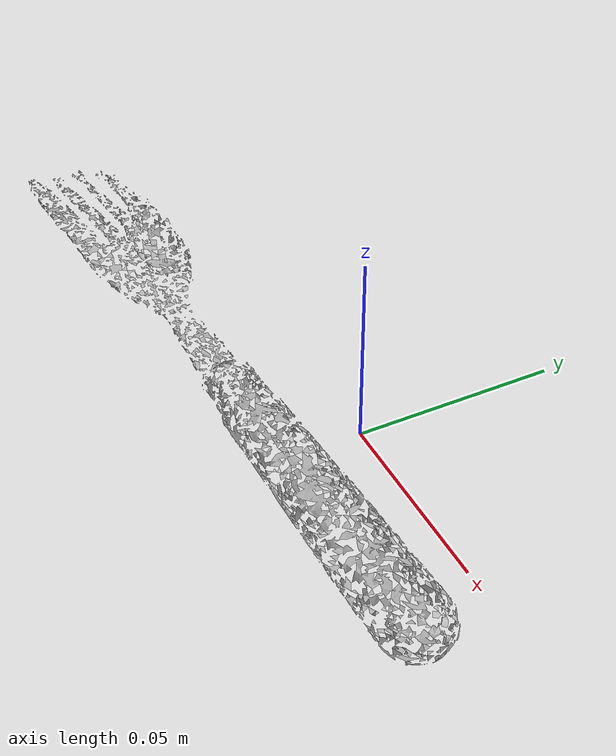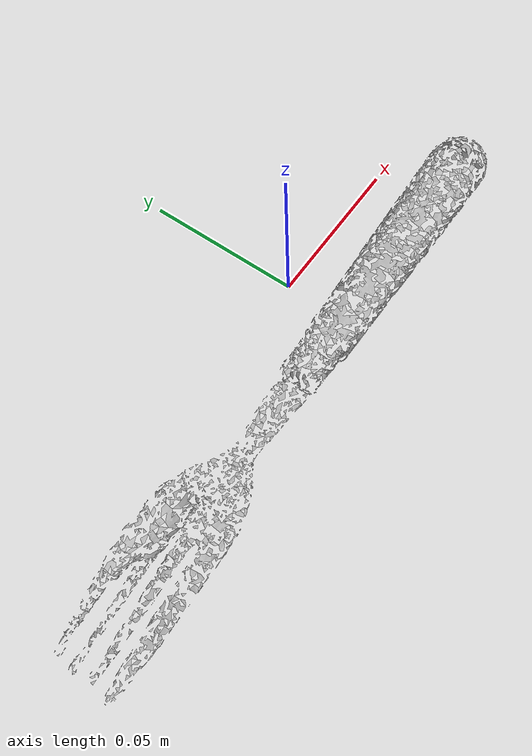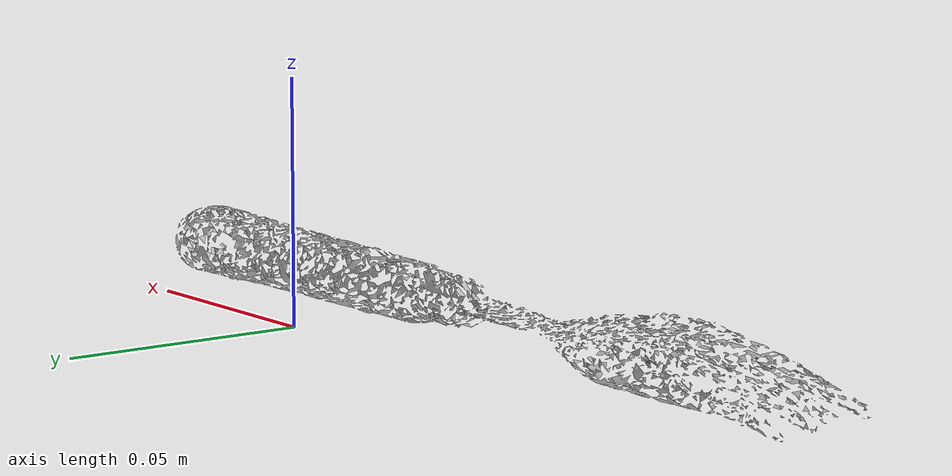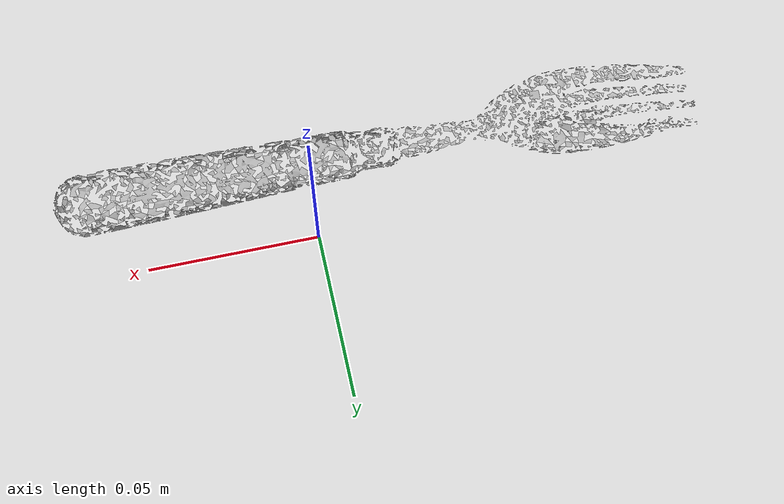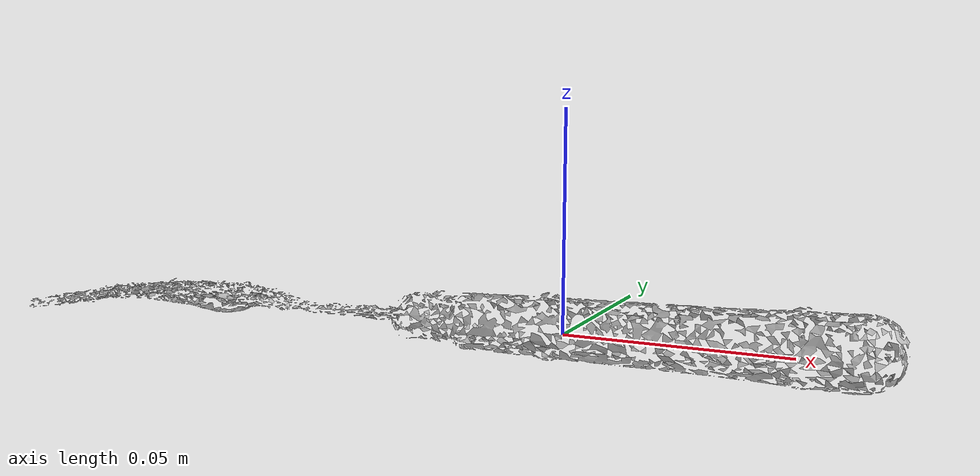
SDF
<?xml version='1.0'?>
<sdf version="1.4">
  <model name="fork">
    <static>false</static>
    <link name="link">
      <inertial>
        <pose>0.008499561933269988 -0.021533112701872234 0.00670927433639299 1.6796656782873078 1.4455254973975005 -1.4638096901156632</pose>
        <mass>1.9601593273736498e-05</mass>
        <inertia>
          <ixx>4.7220439312838285e-08</ixx>
          <ixy>-1.9229895271088358e-23</ixy>
          <ixz>1.8779475393844756e-26</ixz>
          <iyy>4.692445702053864e-08</iyy>
          <iyz>5.699761622758414e-26</iyz>
          <izz>6.556117942788107e-10</izz>
        </inertia>
      </inertial>
      <collision name="collision">
        <geometry>
          <mesh>
            <!-- Use a downsampled mesh for collisions -->
            <uri>model://030_fork/downsampled.obj</uri>
	        </mesh>
        </geometry>
        <surface>
      </surface>
      </collision>
      <visual name="visual">
        <geometry>
          <mesh>
            <uri>model://030_fork/google_16k/textured.obj</uri>
	        </mesh>
        </geometry>
        <material>
          <script>
            <uri>model://030_fork/fork.material</uri>
            <name>fork</name>
          </script>
        </material>
      </visual>
    </link>
  </model>
</sdf>
